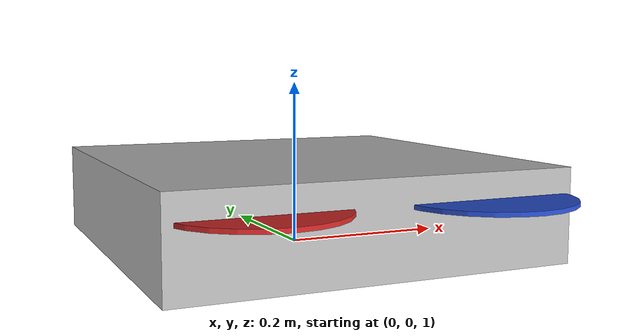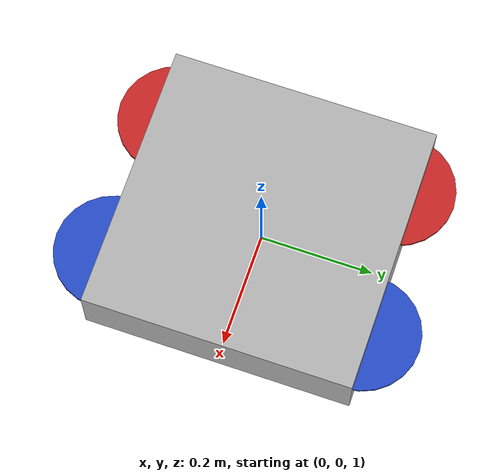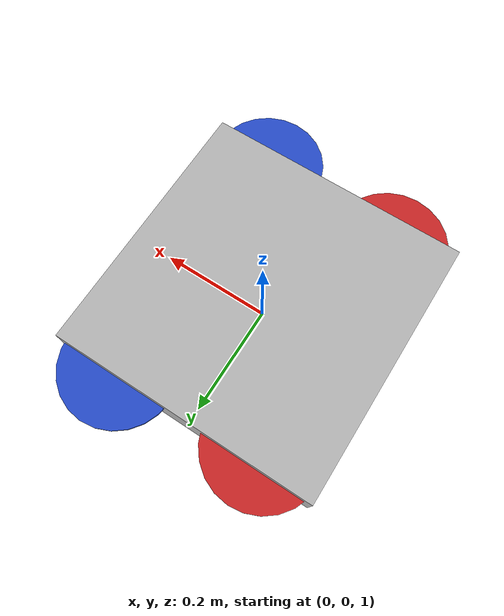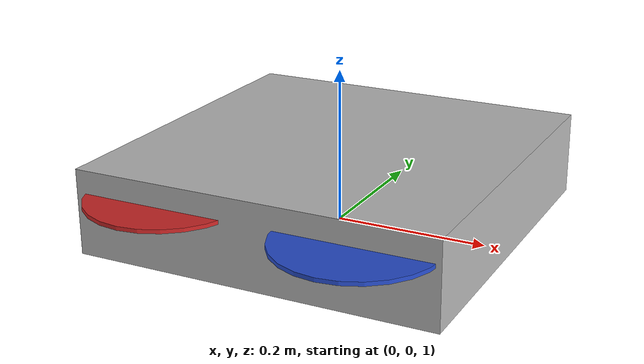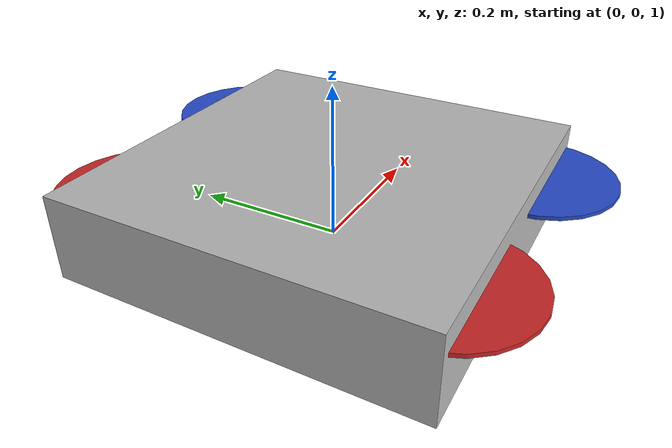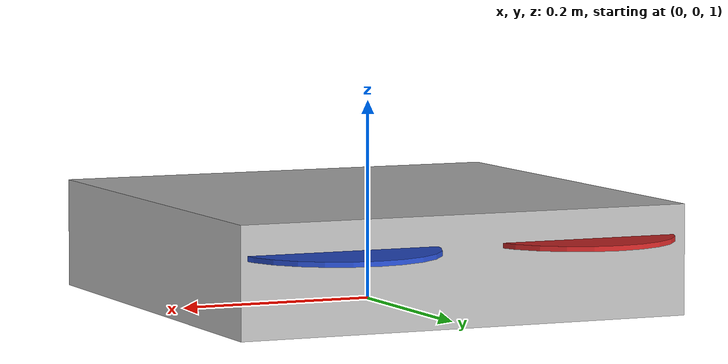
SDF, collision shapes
<?xml version="1.0"?>
<sdf version="1.10">
    <model name="X3_UAV">
        <static>false</static>

        <pose>0 0 1 0 0 0</pose>
        <!-- Dummy link to satisfy SDF requirements -->

        <!-- Include the X3 UAV model from Gazebo Fuel -->
        <include>
        <link name="base_link">
            <pose>0 0 0.1 0 0 0</pose>
            <inertial>
                <mass>1.0</mass>
                <inertia>
                    <ixx>0.03</ixx>
                    <iyy>0.03</iyy>
                    <izz>0.06</izz>
                </inertia>
            </inertial>
            <collision name="base_collision">
                <geometry>
                    <box>
                        <size>0.5 0.5 0.2</size>
                    </box>
                </geometry>
                <surface>
                    <contact>
                        <ode>
                            <soft_cfm>0.01</soft_cfm>
                            <soft_erp>0.2</soft_erp>
                        </ode>
                    </contact>
                </surface>
            </collision>
        </link>

            <uri> https://fuel.gazebosim.org/1.0/OpenRobotics/models/X3 UAV/4 <pose
                    relative_to="base_link">0 0 0 0 0 0</pose>
            </uri>
            <plugin
                filename="gz-sim-multicopter-motor-model-system"
                name="gz::sim::systems::MulticopterMotorModel">
                <robotNamespace>X3</robotNamespace>
                <jointName>X3/rotor_0_joint</jointName>
                <linkName>X3/rotor_0</linkName>
                <turningDirection>ccw</turningDirection>
                <timeConstantUp>0.0125</timeConstantUp>
                <timeConstantDown>0.025</timeConstantDown>
                <maxRotVelocity>800.0</maxRotVelocity>
                <motorConstant>8.54858e-06</motorConstant>
                <momentConstant>0.016</momentConstant>
                <commandSubTopic>gazebo/command/motor_speed</commandSubTopic>
                <actuator_number>0</actuator_number>
                <rotorDragCoefficient>8.06428e-05</rotorDragCoefficient>
                <rollingMomentCoefficient>1e-06</rollingMomentCoefficient>
                <motorSpeedPubTopic>motor_speed/0</motorSpeedPubTopic>
                <rotorVelocitySlowdownSim>10</rotorVelocitySlowdownSim>
                <motorType>velocity</motorType>
            </plugin>
            <plugin
                filename="gz-sim-multicopter-motor-model-system"
                name="gz::sim::systems::MulticopterMotorModel">
                <robotNamespace>X3</robotNamespace>
                <jointName>X3/rotor_1_joint</jointName>
                <linkName>X3/rotor_1</linkName>
                <turningDirection>ccw</turningDirection>
                <timeConstantUp>0.0125</timeConstantUp>
                <timeConstantDown>0.025</timeConstantDown>
                <maxRotVelocity>800.0</maxRotVelocity>
                <motorConstant>8.54858e-06</motorConstant>
                <momentConstant>0.016</momentConstant>
                <commandSubTopic>gazebo/command/motor_speed</commandSubTopic>
                <actuator_number>1</actuator_number>
                <rotorDragCoefficient>8.06428e-05</rotorDragCoefficient>
                <rollingMomentCoefficient>1e-06</rollingMomentCoefficient>
                <motorSpeedPubTopic>motor_speed/1</motorSpeedPubTopic>
                <rotorVelocitySlowdownSim>10</rotorVelocitySlowdownSim>
                <motorType>velocity</motorType>
            </plugin>
            <plugin
                filename="gz-sim-multicopter-motor-model-system"
                name="gz::sim::systems::MulticopterMotorModel">
                <robotNamespace>X3</robotNamespace>
                <jointName>X3/rotor_2_joint</jointName>
                <linkName>X3/rotor_2</linkName>
                <turningDirection>cw</turningDirection>
                <timeConstantUp>0.0125</timeConstantUp>
                <timeConstantDown>0.025</timeConstantDown>
                <maxRotVelocity>800.0</maxRotVelocity>
                <motorConstant>8.54858e-06</motorConstant>
                <momentConstant>0.016</momentConstant>
                <commandSubTopic>gazebo/command/motor_speed</commandSubTopic>
                <actuator_number>2</actuator_number>
                <rotorDragCoefficient>8.06428e-05</rotorDragCoefficient>
                <rollingMomentCoefficient>1e-06</rollingMomentCoefficient>
                <motorSpeedPubTopic>motor_speed/2</motorSpeedPubTopic>
                <rotorVelocitySlowdownSim>10</rotorVelocitySlowdownSim>
                <motorType>velocity</motorType>
            </plugin>
            <plugin
                filename="gz-sim-multicopter-motor-model-system"
                name="gz::sim::systems::MulticopterMotorModel">
                <robotNamespace>X3</robotNamespace>
                <jointName>X3/rotor_3_joint</jointName>
                <linkName>X3/rotor_3</linkName>
                <turningDirection>cw</turningDirection>
                <timeConstantUp>0.0125</timeConstantUp>
                <timeConstantDown>0.025</timeConstantDown>
                <maxRotVelocity>800.0</maxRotVelocity>
                <motorConstant>8.54858e-06</motorConstant>
                <momentConstant>0.016</momentConstant>
                <commandSubTopic>gazebo/command/motor_speed</commandSubTopic>
                <actuator_number>3</actuator_number>
                <rotorDragCoefficient>8.06428e-05</rotorDragCoefficient>
                <rollingMomentCoefficient>1e-06</rollingMomentCoefficient>
                <motorSpeedPubTopic>motor_speed/3</motorSpeedPubTopic>
                <rotorVelocitySlowdownSim>10</rotorVelocitySlowdownSim>
                <motorType>velocity</motorType>
            </plugin>
        <joint name="base_link_to_x3_joint" type="fixed">
            <parent>base_link</parent>
            <child>x3::X3::base_link</child>
        </joint>
        </include>

    </model>
</sdf>

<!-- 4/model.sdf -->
<sdf version="1.6">
    <model name="x3">
        <pose>0 0 0.053302 0 0 0</pose>
        <link name="X3/base_link">
            <pose frame="">0 0 0 0 -0 0</pose>
            <inertial>
                <pose frame="">0 0 0 0 -0 0</pose>
                <mass>1.5</mass>
                <inertia>
                    <ixx>0.0347563</ixx>
                    <ixy>0</ixy>
                    <ixz>0</ixz>q
                    <iyy>0.07</iyy>
                    <iyz>0</iyz>
                    <izz>0.0977</izz>
                </inertia>
            </inertial>
            <collision name="X3/base_link_inertia_collision">
                <pose frame="">0 0 0 0 -0 0</pose>
                <geometry>
                    <box>
                        <size>0.47 0.47 0.11</size>
                    </box>
                </geometry>
            </collision>
            <visual name="X3/base_link_inertia_visual">
                <pose frame="">0 0 0 0 -0 0</pose>
                <geometry>
                    <mesh>
                        <scale>1 1 1</scale>
                        <uri>https://fuel.ignitionrobotics.org/1.0/openrobotics/models/x3 uav/4/files/meshes/x3.dae</uri>
                    </mesh>
                </geometry>
            </visual>
            <sensor name="imu_sensor" type="imu">
                <always_on>1</always_on>
                <update_rate>250</update_rate>
                <imu>
                    <enable_orientation>0</enable_orientation>
                    <angular_velocity>
                        <x>
                            <noise type="gaussian">
                                <mean>0</mean>
                                <stddev>0.009</stddev>
                                <bias_mean>0.00075</bias_mean>
                                <bias_stddev>0.005</bias_stddev>
                                <dynamic_bias_stddev>0.00002</dynamic_bias_stddev>
				<dynamic_bias_correlation_time>400.0</dynamic_bias_correlation_time>
				<precision>0.00025</precision>
                            </noise>
                        </x>
                        <y>
                            <noise type="gaussian">
                                <mean>0</mean>
                                <stddev>0.009</stddev>
                                <bias_mean>0.00075</bias_mean>
                                <bias_stddev>0.005</bias_stddev>
                                <dynamic_bias_stddev>0.00002</dynamic_bias_stddev>
				<dynamic_bias_correlation_time>400.0</dynamic_bias_correlation_time>
				<precision>0.00025</precision>
                            </noise>
                        </y>
                        <z>
                            <noise type="gaussian">
                                <mean>0</mean>
                                <stddev>0.009</stddev>
                                <bias_mean>0.00075</bias_mean>
                                <bias_stddev>0.005</bias_stddev>
                                <dynamic_bias_stddev>0.00002</dynamic_bias_stddev>
				<dynamic_bias_correlation_time>400.0</dynamic_bias_correlation_time>
				<precision>0.00025</precision>
                            </noise>
                        </z>
                    </angular_velocity>
                    <linear_acceleration>
                        <x>
                            <noise type="gaussian">
                                <mean>0</mean>
                                <stddev>0.021</stddev>
                                <bias_mean>0.05</bias_mean>
                                <bias_stddev>0.0075</bias_stddev>
                                <dynamic_bias_stddev>0.000375</dynamic_bias_stddev>
				<dynamic_bias_correlation_time>175.0</dynamic_bias_correlation_time>
				<precision>0.005</precision>
                            </noise>
                        </x>
                        <y>
                            <noise type="gaussian">
                                <mean>0</mean>
                                <stddev>0.021</stddev>
                                <bias_mean>0.05</bias_mean>
                                <bias_stddev>0.0075</bias_stddev>
                                <dynamic_bias_stddev>0.000375</dynamic_bias_stddev>
				<dynamic_bias_correlation_time>175.0</dynamic_bias_correlation_time>
				<precision>0.005</precision>
                            </noise>
                        </y>
                        <z>
                            <noise type="gaussian">
                                <mean>0</mean>
                                <stddev>0.021</stddev>
                                <bias_mean>0.05</bias_mean>
                                <bias_stddev>0.0075</bias_stddev>
                                <dynamic_bias_stddev>0.000375</dynamic_bias_stddev>
				<dynamic_bias_correlation_time>175.0</dynamic_bias_correlation_time>
				<precision>0.005</precision>
                            </noise>
                        </z>
                    </linear_acceleration>
                </imu>
            </sensor>

            <sensor name="magnetometer" type="magnetometer">
                <always_on>1</always_on>
                <update_rate>20</update_rate>
                <magnetometer>
                    <x>
                        <noise type="gaussian">
                            <mean>0.000000080</mean>
                            <bias_mean>0.000000400</bias_mean>
                        </noise>
                    </x>
                    <y>
                        <noise type="gaussian">
                            <mean>0.000000080</mean>
                            <bias_mean>0.000000400</bias_mean>
                        </noise>
                    </y>
                    <z>
                        <noise type="gaussian">
                            <mean>0.000000080</mean>
                            <bias_mean>0.000000400</bias_mean>
                        </noise>
                    </z>
                </magnetometer>
            </sensor>

            <visual name="camera_visual">
                <pose>0.1 0 0 0 0 0</pose>
                <geometry>
                    <box>
                        <size>0.02 0.02 0.02</size>
                    </box>
                </geometry>
            </visual>

            <sensor name="camera_front" type="rgbd_camera">
                <ignition_frame_id>camera_frame_rgb</ignition_frame_id>
                <pose>0.1 0 0 0 0 0</pose>
                <always_on>1</always_on>
                <update_rate>20</update_rate>
                <camera name="camera_front">
                    <horizontal_fov>1.0472</horizontal_fov>
                    <lens>
                        <intrinsics>
                          <!-- fx = fy = width / ( 2 * tan (hfov / 2 ) ) -->
                          <fx>554.3</fx>
                          <fy>554.3</fy>
                          <!-- cx = ( width + 1 ) / 2 -->
                          <cx>320.5</cx>
                          <!-- cy = ( height + 1 ) / 2 -->
                          <cy>240.5</cy>
                          <s>0</s>
                        </intrinsics>
                    </lens>
                    <distortion>
                        <k1>0.0</k1>
                        <k2>0.0</k2>
                        <k3>0.0</k3>
                        <p1>0.0</p1>
                        <p2>0.0</p2>
                        <center>0.5 0.5</center>
                    </distortion>
                    <image>
                        <width>640</width>
                        <height>480</height>
                        <format>R8G8B8</format>
                    </image>
                    <clip>
                        <near>0.01</near>
                        <far>300</far>
                    </clip>
                    <depth_camera>
                      <clip>
                        <near>0.1</near>
                        <far>10</far>
                      </clip>
                    </depth_camera>
                    <noise>
                        <type>gaussian</type>
                        <mean>0</mean>
                        <stddev>0.007</stddev>
                    </noise>
                </camera>
            </sensor>

            <sensor name='navsat' type='navsat'>
                <always_on>true</always_on>
                <update_rate>20</update_rate>
            </sensor>

        </link>
        <link name="X3/rotor_0">
            <pose frame="">0.13 -0.22 0.023 0 -0 0</pose>
            <inertial>
                <pose frame="">0 0 0 0 -0 0</pose>
                <mass>0.005</mass>
                <inertia>
                    <ixx>9.75e-07</ixx>
                    <ixy>0</ixy>
                    <ixz>0</ixz>
                    <iyy>4.17041e-05</iyy>
                    <iyz>0</iyz>
                    <izz>4.26041e-05</izz>
                </inertia>
            </inertial>
            <collision name="X3/rotor_0_collision">
                <pose frame="">0 0 0 0 -0 0</pose>
                <geometry>
                    <cylinder>
                        <length>0.005</length>
                        <radius>0.1</radius>
                    </cylinder>
                </geometry>
                <surface>
                    <contact>
                        <ode/>
                    </contact>
                    <friction>
                        <ode/>
                    </friction>
                </surface>
            </collision>
            <visual name="X3/rotor_0_visual">
                <pose frame="">0 0 0 0 -0 0</pose>
                <geometry>
                    <mesh>
                        <scale>0.1 0.1 0.1</scale>
                        <uri>https://fuel.ignitionrobotics.org/1.0/openrobotics/models/x3 uav/4/files/meshes/propeller_ccw.dae</uri>
                    </mesh>
                </geometry>
                <material>
                    <script>
                        <name>Gazebo/Blue</name>
                        <uri>file://media/materials/scripts/gazebo.material</uri>
                    </script>
                </material>
            </visual>
            <gravity>1</gravity>
            <velocity_decay/>
        </link>
        <joint name="X3/rotor_0_joint" type="revolute">
            <child>X3/rotor_0</child>
            <parent>X3/base_link</parent>
            <axis>
                <xyz>0 0 1</xyz>
                <limit>
                    <lower>-1e+16</lower>
                    <upper>1e+16</upper>
                </limit>
                <dynamics>
                    <spring_reference>0</spring_reference>
                    <spring_stiffness>0</spring_stiffness>
                </dynamics>
                <use_parent_model_frame>1</use_parent_model_frame>
            </axis>
        </joint>
        <link name="X3/rotor_1">
            <pose frame="">-0.13 0.2 0.023 0 -0 0</pose>
            <inertial>
                <pose frame="">0 0 0 0 -0 0</pose>
                <mass>0.005</mass>
                <inertia>
                    <ixx>9.75e-07</ixx>
                    <ixy>0</ixy>
                    <ixz>0</ixz>
                    <iyy>4.17041e-05</iyy>
                    <iyz>0</iyz>
                    <izz>4.26041e-05</izz>
                </inertia>
            </inertial>
            <collision name="X3/rotor_1_collision">
                <pose frame="">0 0 0 0 -0 0</pose>
                <geometry>
                    <cylinder>
                        <length>0.005</length>
                        <radius>0.1</radius>
                    </cylinder>
                </geometry>
                <surface>
                    <contact>
                        <ode/>
                    </contact>
                    <friction>
                        <ode/>
                    </friction>
                </surface>
            </collision>
            <visual name="X3/rotor_1_visual">
                <pose frame="">0 0 0 0 -0 0</pose>
                <geometry>
                    <mesh>
                        <scale>0.1 0.1 0.1</scale>
                        <uri>https://fuel.ignitionrobotics.org/1.0/openrobotics/models/x3 uav/4/files/meshes/propeller_ccw.dae</uri>
                    </mesh>
                </geometry>
                <material>
                    <script>
                        <name>Gazebo/Red</name>
                        <uri>file://media/materials/scripts/gazebo.material</uri>
                    </script>
                </material>
            </visual>
            <gravity>1</gravity>
            <velocity_decay/>
        </link>
        <joint name="X3/rotor_1_joint" type="revolute">
            <child>X3/rotor_1</child>
            <parent>X3/base_link</parent>
            <axis>
                <xyz>0 0 1</xyz>
                <limit>
                    <lower>-1e+16</lower>
                    <upper>1e+16</upper>
                </limit>
                <dynamics>
                    <spring_reference>0</spring_reference>
                    <spring_stiffness>0</spring_stiffness>
                </dynamics>
                <use_parent_model_frame>1</use_parent_model_frame>
            </axis>
        </joint>
        <link name="X3/rotor_2">
            <pose frame="">0.13 0.22 0.023 0 -0 0</pose>
            <inertial>
                <pose frame="">0 0 0 0 -0 0</pose>
                <mass>0.005</mass>
                <inertia>
                    <ixx>9.75e-07</ixx>
                    <ixy>0</ixy>
                    <ixz>0</ixz>
                    <iyy>4.17041e-05</iyy>
                    <iyz>0</iyz>
                    <izz>4.26041e-05</izz>
                </inertia>
            </inertial>
            <collision name="X3/rotor_2_collision">
                <pose frame="">0 0 0 0 -0 0</pose>
                <geometry>
                    <cylinder>
                        <length>0.005</length>
                        <radius>0.1</radius>
                    </cylinder>
                </geometry>
                <surface>
                    <contact>
                        <ode/>
                    </contact>
                    <friction>
                        <ode/>
                    </friction>
                </surface>
            </collision>
            <visual name="X3/rotor_2_visual">
                <pose frame="">0 0 0 0 -0 0</pose>
                <geometry>
                    <mesh>
                        <scale>0.1 0.1 0.1</scale>
                        <uri>https://fuel.ignitionrobotics.org/1.0/openrobotics/models/x3 uav/4/files/meshes/propeller_cw.dae</uri>
                    </mesh>
                </geometry>
                <material>
                    <script>
                        <name>Gazebo/Blue</name>
                        <uri>file://media/materials/scripts/gazebo.material</uri>
                    </script>
                </material>
            </visual>
            <gravity>1</gravity>
            <velocity_decay/>
        </link>
        <joint name="X3/rotor_2_joint" type="revolute">
            <child>X3/rotor_2</child>
            <parent>X3/base_link</parent>
            <axis>
                <xyz>0 0 1</xyz>
                <limit>
                    <lower>-1e+16</lower>
                    <upper>1e+16</upper>
                </limit>
                <dynamics>
                    <spring_reference>0</spring_reference>
                    <spring_stiffness>0</spring_stiffness>
                </dynamics>
                <use_parent_model_frame>1</use_parent_model_frame>
            </axis>
        </joint>
        <link name="X3/rotor_3">
            <pose frame="">-0.13 -0.2 0.023 0 -0 0</pose>
            <inertial>
                <pose frame="">0 0 0 0 -0 0</pose>
                <mass>0.005</mass>
                <inertia>
                    <ixx>9.75e-07</ixx>
                    <ixy>0</ixy>
                    <ixz>0</ixz>
                    <iyy>4.17041e-05</iyy>
                    <iyz>0</iyz>
                    <izz>4.26041e-05</izz>
                </inertia>
            </inertial>
            <collision name="X3/rotor_3_collision">
                <pose frame="">0 0 0 0 -0 0</pose>
                <geometry>
                    <cylinder>
                        <length>0.005</length>
                        <radius>0.1</radius>
                    </cylinder>
                </geometry>
                <surface>
                    <contact>
                        <ode/>
                    </contact>
                    <friction>
                        <ode/>
                    </friction>
                </surface>
            </collision>
            <visual name="X3/rotor_3_visual">
                <pose frame="">0 0 0 0 -0 0</pose>
                <geometry>
                    <mesh>
                        <scale>0.1 0.1 0.1</scale>
                        <uri>https://fuel.ignitionrobotics.org/1.0/openrobotics/models/x3 uav/4/files/meshes/propeller_cw.dae</uri>
                    </mesh>
                </geometry>
                <material>
                    <script>
                        <name>Gazebo/Red</name>
                        <uri>file://media/materials/scripts/gazebo.material</uri>
                    </script>
                </material>
            </visual>
            <gravity>1</gravity>
            <velocity_decay/>
        </link>
        <joint name="X3/rotor_3_joint" type="revolute">
            <child>X3/rotor_3</child>
            <parent>X3/base_link</parent>
            <axis>
                <xyz>0 0 1</xyz>
                <limit>
                    <lower>-1e+16</lower>
                    <upper>1e+16</upper>
                </limit>
                <dynamics>
                    <spring_reference>0</spring_reference>
                    <spring_stiffness>0</spring_stiffness>
                </dynamics>
                <use_parent_model_frame>1</use_parent_model_frame>
            </axis>
        </joint>
        <plugin name='ignition::gazebo::systems::OdometryPublisher' filename='ignition-gazebo-odometry-publisher-system'>
            <dimensions>3</dimensions>
            <odom_publish_frequency>10.0</odom_publish_frequency>
            <odom_frame>odom</odom_frame>
            <robot_base_frame>x3/X3/base_link</robot_base_frame>
        </plugin>

        <plugin name='ignition::gazebo::systems::JointStatePublisher' filename='ignition-gazebo-joint-state-publisher-system'/>

        <plugin name='ignition::gazebo::systems::PosePublisher' filename='libignition-gazebo-pose-publisher-system.so'>
            <publish_link_pose>false</publish_link_pose>
            <publish_sensor_pose>true</publish_sensor_pose>
            <publish_collision_pose>false</publish_collision_pose>
            <publish_visual_pose>false</publish_visual_pose>
            <publish_nested_model_pose>false</publish_nested_model_pose>
            <publish_model_pose>false</publish_model_pose>
            <use_pose_vector_msg>true</use_pose_vector_msg>
            <static_publisher>false</static_publisher>
            <static_update_frequency>1</static_update_frequency>
        </plugin>

        <plugin
            filename="ignition-gazebo-multicopter-motor-model-system"
            name="ignition::gazebo::systems::MulticopterMotorModel">
            <robotNamespace>X3</robotNamespace>
            <jointName>X3/rotor_0_joint</jointName>
            <linkName>X3/rotor_0</linkName>
            <turningDirection>ccw</turningDirection>
            <timeConstantUp>0.0125</timeConstantUp>
            <timeConstantDown>0.025</timeConstantDown>
            <maxRotVelocity>800.0</maxRotVelocity>
            <motorConstant>8.54858e-06</motorConstant>
            <momentConstant>0.016</momentConstant>
            <commandSubTopic>gazebo/command/motor_speed</commandSubTopic>
            <motorNumber>0</motorNumber>
            <rotorDragCoefficient>8.06428e-05</rotorDragCoefficient>
            <rollingMomentCoefficient>1e-06</rollingMomentCoefficient>
            <motorSpeedPubTopic>motor_speed/0</motorSpeedPubTopic>
            <rotorVelocitySlowdownSim>10</rotorVelocitySlowdownSim>
            <motorType>velocity</motorType>
        </plugin>
        <plugin
            filename="ignition-gazebo-multicopter-motor-model-system"
            name="ignition::gazebo::systems::MulticopterMotorModel">
            <robotNamespace>X3</robotNamespace>
            <jointName>X3/rotor_1_joint</jointName>
            <linkName>X3/rotor_1</linkName>
            <turningDirection>ccw</turningDirection>
            <timeConstantUp>0.0125</timeConstantUp>
            <timeConstantDown>0.025</timeConstantDown>
            <maxRotVelocity>800.0</maxRotVelocity>
            <motorConstant>8.54858e-06</motorConstant>
            <momentConstant>0.016</momentConstant>
            <commandSubTopic>gazebo/command/motor_speed</commandSubTopic>
            <motorNumber>1</motorNumber>
            <rotorDragCoefficient>8.06428e-05</rotorDragCoefficient>
            <rollingMomentCoefficient>1e-06</rollingMomentCoefficient>
            <motorSpeedPubTopic>motor_speed/1</motorSpeedPubTopic>
            <rotorVelocitySlowdownSim>10</rotorVelocitySlowdownSim>
            <motorType>velocity</motorType>
        </plugin>
        <plugin
            filename="ignition-gazebo-multicopter-motor-model-system"
            name="ignition::gazebo::systems::MulticopterMotorModel">
            <robotNamespace>X3</robotNamespace>
            <jointName>X3/rotor_2_joint</jointName>
            <linkName>X3/rotor_2</linkName>
            <turningDirection>cw</turningDirection>
            <timeConstantUp>0.0125</timeConstantUp>
            <timeConstantDown>0.025</timeConstantDown>
            <maxRotVelocity>800.0</maxRotVelocity>
            <motorConstant>8.54858e-06</motorConstant>
            <momentConstant>0.016</momentConstant>
            <commandSubTopic>gazebo/command/motor_speed</commandSubTopic>
            <motorNumber>2</motorNumber>
            <rotorDragCoefficient>8.06428e-05</rotorDragCoefficient>
            <rollingMomentCoefficient>1e-06</rollingMomentCoefficient>
            <motorSpeedPubTopic>motor_speed/2</motorSpeedPubTopic>
            <rotorVelocitySlowdownSim>10</rotorVelocitySlowdownSim>
            <motorType>velocity</motorType>
        </plugin>
        <plugin
            filename="ignition-gazebo-multicopter-motor-model-system"
            name="ignition::gazebo::systems::MulticopterMotorModel">
            <robotNamespace>X3</robotNamespace>
            <jointName>X3/rotor_3_joint</jointName>
            <linkName>X3/rotor_3</linkName>
            <turningDirection>cw</turningDirection>
            <timeConstantUp>0.0125</timeConstantUp>
            <timeConstantDown>0.025</timeConstantDown>
            <maxRotVelocity>800.0</maxRotVelocity>
            <motorConstant>8.54858e-06</motorConstant>
            <momentConstant>0.016</momentConstant>
            <commandSubTopic>gazebo/command/motor_speed</commandSubTopic>
            <motorNumber>3</motorNumber>
            <rotorDragCoefficient>8.06428e-05</rotorDragCoefficient>
            <rollingMomentCoefficient>1e-06</rollingMomentCoefficient>
            <motorSpeedPubTopic>motor_speed/3</motorSpeedPubTopic>
            <rotorVelocitySlowdownSim>10</rotorVelocitySlowdownSim>
            <motorType>velocity</motorType>
        </plugin>
        <plugin
            filename="ignition-gazebo-multicopter-control-system"
            name="ignition::gazebo::systems::MulticopterVelocityControl">
            <robotNamespace>X3</robotNamespace>
            <commandSubTopic>cmd_vel</commandSubTopic>
            <enableSubTopic>enable</enableSubTopic>
            <comLinkName>X3/base_link</comLinkName>
            <velocityGain>2.7 2.7 2.7</velocityGain>
            <attitudeGain>2 3 0.15</attitudeGain>
            <angularRateGain>0.4 0.52 0.18</angularRateGain>
            <maximumLinearAcceleration>2 2 2</maximumLinearAcceleration>

            <rotorConfiguration>
            <rotor>
                <jointName>X3/rotor_0_joint</jointName>
                <forceConstant>8.54858e-06</forceConstant>
                <momentConstant>0.016</momentConstant>
                <direction>1</direction>
            </rotor>
            <rotor>
                <jointName>X3/rotor_1_joint</jointName>
                <forceConstant>8.54858e-06</forceConstant>
                <momentConstant>0.016</momentConstant>
                <direction>1</direction>
            </rotor>
            <rotor>
                <jointName>X3/rotor_2_joint</jointName>
                <forceConstant>8.54858e-06</forceConstant>
                <momentConstant>0.016</momentConstant>
                <direction>-1</direction>
            </rotor>
            <rotor>
                <jointName>X3/rotor_3_joint</jointName>
                <forceConstant>8.54858e-06</forceConstant>
                <momentConstant>0.016</momentConstant>
                <direction>-1</direction>
            </rotor>
            </rotorConfiguration>
        </plugin>
    </model>
</sdf>
